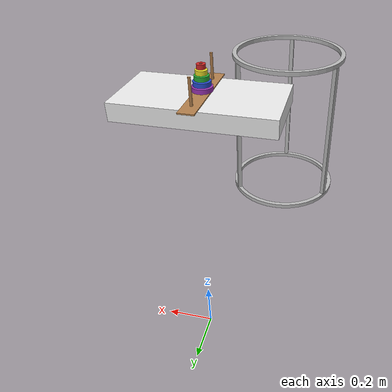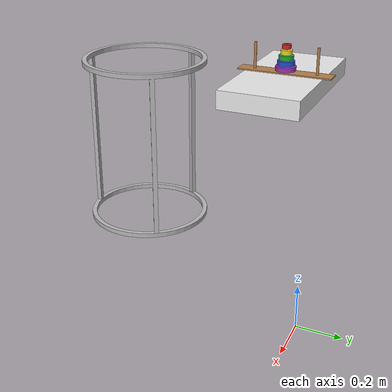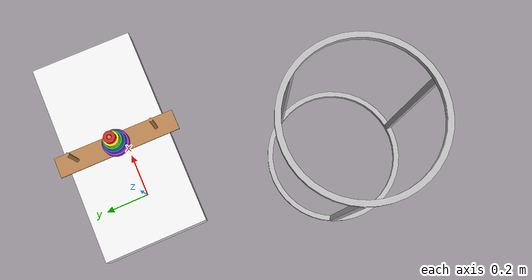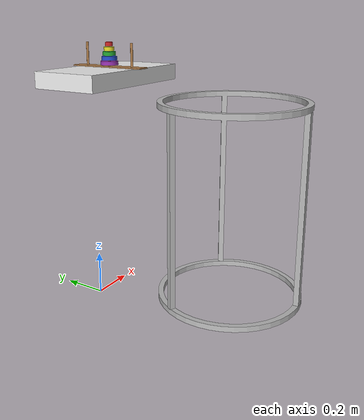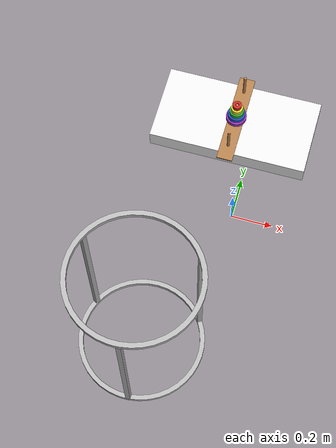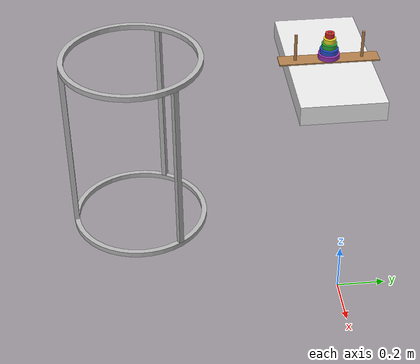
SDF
<sdf version="1.6">
 <world name="default">
  <model name="camera_00">
   <static>true</static>
   <link name="eye_vision_camera">
    <sensor name="camera" type="camera">
     <topic>/robot/camera</topic>
     <camera name="__default__">
      <horizontal_fov>1.57</horizontal_fov>
      <image><width>320</width><height>320</height></image>
      <clip><near>0.1</near><far>100</far></clip>
     </camera>
     <always_on>1</always_on>
     <update_rate>100.0</update_rate>
     <visualize>1</visualize>
     <plugin name="mouse_right_eye" filename="libgazebo_ros_camera.so">
      <alwaysOn>1</alwaysOn>
      <cameraName>robot</cameraName>
      <imageTopicName>camera_rgb_00</imageTopicName>
      <cameraInfoTopicName>camera_rgb_info</cameraInfoTopicName>
      <frameName>camera_link</frameName>
      <hackBaseline>0.07</hackBaseline>
      <distortionK1>0.0</distortionK1>
      <distortionK2>0.0</distortionK2>
      <distortionK3>0.0</distortionK3>
      <distortionT1>0.0</distortionT1>
      <distortionT2>0.0</distortionT2>
     </plugin>
     <plugin name="camera_controller" filename="libgazebo_dvs_plugin.so">
      <cameraName>camera_dvs_00</cameraName>
      <robotNamespace>robot</robotNamespace>
      <eventThreshold>5</eventThreshold>
      <cameraInfoTopicName>camera_info</cameraInfoTopicName>
     </plugin>
    </sensor>
    <gravity>0</gravity>
    <inertial>
     <inertia><ixx>1</ixx><ixy>0</ixy><ixz>0</ixz><iyy>1</iyy><iyz>0</iyz><izz>1</izz></inertia>
     <mass>1</mass>
    </inertial>
   </link>
  </model>
  <light name="sun" type="directional">
   <pose>7.485 -12.379 17.2198 0 -0 0</pose>
   <diffuse>0.7 0.7 0.7 1</diffuse>
   <specular>0.2 0.2 0.2 1</specular>
   <direction>-0.103698 0.1 -0.3</direction>
   <attenuation>
    <range>1000</range>
    <constant>0.9</constant>
    <linear>0.01</linear>
    <quadratic>0.001</quadratic>
   </attenuation>
  </light>
  <include><uri>model://landing_box</uri><pose>-0.2 -0.8 0.3 0 -0 0</pose></include>
  <include><uri>model://hanoi_board</uri><pose>0 -0.1 1.1055 0 -0 0</pose></include>
  <include><uri>model://hanoi_box</uri><pose>-0.44 -0.1 2.035 0 -0 0</pose></include>
  <include><uri>model://hanoi_tower_d300</uri><pose>0 -0.1 1.195 0 -0 0</pose></include>
  <include><uri>model://hanoi_tower_d400</uri><pose>0 -0.1 1.175 0 -0 0</pose></include>
  <include><uri>model://hanoi_tower_d500</uri><pose>0 -0.1 1.155 0 -0 0</pose></include>
  <include><uri>model://hanoi_tower_d600</uri><pose>0 -0.1 1.135 0 -0 0</pose></include>
  <include><uri>model://hanoi_tower_d700</uri><pose>0 -0.1 1.115 0 -0 0</pose></include>
  <physics name="default_physics" default="0" type="ode">
   <max_step_size>0.001</max_step_size>
   <real_time_factor>0.1</real_time_factor>
   <real_time_update_rate>100</real_time_update_rate>
  </physics>
 </world>
</sdf>

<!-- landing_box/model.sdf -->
<sdf version='1.6'>
  <model name='Landing box'>
  <static>true</static>
    <link name='base_link'>
      <pose frame=''>0 0 0 0 -0 0</pose>
      <inertial>
        <pose frame=''>0 0.003044 0.366956 0 -0 0</pose>
        <mass>2.1469</mass>
        <inertia>
          <ixx>0.251683</ixx>
          <ixy>0.00621323</ixy>
          <ixz>-0.015183</ixz>
          <iyy>0.268915</iyy>
          <iyz>-0.00799762</iyz>
          <izz>0.110272</izz>
        </inertia>
      </inertial>
      <collision name='base_link_collision'>
        <pose frame=''>0 0 0 0 -0 0</pose>
        <geometry>
         <cylinder>
            <length>0.02</length>
            <radius>0.26</radius>
          </cylinder>
        </geometry>
      </collision>
      <visual name='base_link_visual'>
        <pose frame=''>0 0 0 0 -0 0</pose>
        <geometry>
          <mesh>
            <scale>1 1 1</scale>
            <uri>model://landing_box/meshes/base_link.dae</uri>
          </mesh>
        </geometry>
      </visual>
    </link>
    <link name='Link_1'>
      <collision name='base_link_fixed_joint_lump__Link_1_collision_1'>
        <pose frame=''>-0.235167 0.112679 0.37 1.5708 -0 2.61799</pose>
        <geometry>
          <box>
              <size>0.02 0.7 0.02</size>
          </box>
        </geometry>
      </collision>
       <visual name='base_link_fixed_joint_lump__Link_1_visual_1'>
        <pose frame=''>-0.235167 0.112679 0.02 1.5708 -0 2.61799</pose>
        <geometry>
          <mesh>
            <scale>1 1 1</scale>
            <uri>model://landing_box/meshes/Link_1.dae</uri>
          </mesh>
        </geometry>
      </visual>
    </link>
    <link name='Link_2'>
      <collision name='base_link_fixed_joint_lump__Link_2_collision_2'>
        <pose frame=''>0.02 -0.26 0.37 -1.5708 -0 -1.5708</pose>
        <geometry>
           <box>
              <size>0.02 0.7 0.02</size>
          </box>
        </geometry>
      </collision>
     <visual name='base_link_fixed_joint_lump__Link_2_visual_2'>
        <pose frame=''>0.02 -0.26 0.02 -1.5708 -0 -1.5708</pose>
        <geometry>
          <mesh>
            <scale>1 1 1</scale>
            <uri>model://landing_box/meshes/Link_2.dae</uri>
          </mesh>
        </geometry>
      </visual>
    </link>
    <link name='Link_3'>
     <collision name='base_link_fixed_joint_lump__Link_3_collision_3'>
        <pose frame=''>0.215167 0.147321 0.37 1.5708 -0 0.523599</pose>
        <geometry>
           <box>
              <size>0.02 0.7 0.02</size>
          </box>
        </geometry>
      </collision>
      <visual name='base_link_fixed_joint_lump__Link_3_visual_3'>
        <pose frame=''>0.215167 0.147321 0.02 1.5708 -0 0.523599</pose>
        <geometry>
          <mesh>
            <scale>1 1 1</scale>
            <uri>model://landing_box/meshes/Link_3.dae</uri>
          </mesh>
        </geometry>
      </visual>
    </link>
    <link name='Link_4'>
      <collision name='base_link_fixed_joint_lump__Link_1_collision_4'>
        <pose frame=''>-0.235167 0.112679 0.73 1.5708 -0 2.61799</pose>
        <geometry>
          <box>
              <size>0.02 0.02 0.3</size>
          </box>
        </geometry>
      </collision>
    </link>
    <link name='Link_5'>
      <collision name='base_link_fixed_joint_lump__Link_2_collision_5'>
        <pose frame=''>0.02 -0.26 0.73 -1.5708 -0 -1.5708</pose>
        <geometry>
           <box>
              <size>0.02 0.02 0.3</size>
          </box>
        </geometry>
      </collision>
    </link>
    <link name='Link_6'>
     <collision name='base_link_fixed_joint_lump__Link_3_collision_6'>
        <pose frame=''>0.215167 0.147321 0.73 1.5708 -0 0.523599</pose>
        <geometry>
           <box>
              <size>0.02 0.02 0.3</size>
          </box>
        </geometry>
      </collision>
    </link>
    <link name='Link_7'>
      <collision name='base_link_fixed_joint_lump__Link_1_collision_7'>
        <pose frame=''>0.235167 -0.112679 0.73 1.5708 -0 2.61799</pose>
        <geometry>
          <box>
              <size>0.02 0.02 0.3</size>
          </box>
        </geometry>
      </collision>
    </link>
    <link name='Link_8'>
      <collision name='base_link_fixed_joint_lump__Link_2_collision_8'>
        <pose frame=''>-0.02 0.26 0.73 -1.5708 -0 -1.5708</pose>
        <geometry>
           <box>
              <size>0.02 0.02 0.3</size>
          </box>
        </geometry>
      </collision>
    </link>
    <link name='Link_9'>
     <collision name='base_link_fixed_joint_lump__Link_3_collision_9'>
        <pose frame=''>-0.215167 -0.147321 0.73 1.5708 -0 0.523599</pose>
        <geometry>
           <box>
              <size>0.02 0.02 0.3</size>
          </box>
        </geometry>
      </collision>
    </link>
  </model>
</sdf>

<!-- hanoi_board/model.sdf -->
<sdf version='1.6'>
  <model name='hanoi_board'>
  <static>0</static>
    <link name='towers_of_hanoi_board_base_link'>
      <pose frame=''>0 0 0 0 -0 0</pose>
      <inertial>
        <pose frame=''>0 0 0 0 -0 0</pose>
        <mass>100</mass>
        <inertia>
          <ixx>100</ixx>
          <ixy>0</ixy>
          <ixz>0</ixz>
          <iyy>100</iyy>
          <iyz>0</iyz>
          <izz>100</izz>
        </inertia>
      </inertial>
      <collision name='towers_of_hanoi_board_base_link_collision'>
        <pose frame=''>0 0 0 0 -0 0</pose>
        <geometry>
          <mesh>
            <scale>1.2 1.2 1</scale>
            <uri>model://hanoi_board/meshes/hanoi-board.stl</uri>
          </mesh>
        </geometry>
        <surface>
          <contact>
            <ode/>
          </contact>
          <friction>
            <ode/>
          </friction>
        </surface>
      </collision>
      <visual name='towers_of_hanoi_board_base_link_visual'>
        <pose frame=''>0 0 0 0 -0 0</pose>
        <geometry>
          <mesh>
            <scale>1 1 1</scale>
            <uri>model://hanoi_board/meshes/hanoi-board.dae</uri>
          </mesh>
        </geometry>
        <material>
          <script>
            <name>Gazebo/Wood</name>
            <uri>file://media/materials/scripts/gazebo.material</uri>
          </script>
        </material>
      </visual>
      <gravity>1</gravity>
      <velocity_decay/>
    </link>
    <joint name='world_towers_of_hanoi_board_joint' type='fixed'>
      <child>towers_of_hanoi_board_base_link</child>
      <parent>world</parent>
    </joint>
  </model>
</sdf>

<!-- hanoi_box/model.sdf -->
<sdf version='1.6'>
  <model name='hanoi_box'>
    <link name='board_box'>
      <pose frame=''>0 0 0 0 -0 0</pose>
      <inertial>
        <pose frame=''>0.44 0 -0.965 0 -0 0</pose>
        <mass>1</mass>
        <inertia>
          <ixx>0</ixx>
          <ixy>0</ixy>
          <ixz>0</ixz>
          <iyy>0</iyy>
          <iyz>0</iyz>
          <izz>0</izz>
        </inertia>
      </inertial>
      <collision name='board_box_collision'>
        <pose frame=''>0.44 0 -0.965 0 -0 0</pose>
        <geometry>
          <box>
            <size>0.6 0.3 0.07</size>
          </box>
        </geometry>
        <surface>
          <contact>
            <ode/>
          </contact>
          <friction>
            <ode/>
          </friction>
        </surface>
      </collision>
      <visual name='board_box_visual'>
        <pose frame=''>0.44 0 -0.965 0 -0 0</pose>
        <geometry>
          <box>
            <size>0.6 0.3 0.07</size>
          </box>
        </geometry>
        <material>
          <script>
            <name>Gazebo/White</name>
            <uri>file://media/materials/scripts/gazebo.material</uri>
          </script>
        </material>
      </visual>
      <gravity>1</gravity>
      <velocity_decay/>
    </link>
    <joint name='fixed' type='fixed'>
      <child>board_box</child>
      <parent>world</parent>
    </joint>
  </model>
</sdf>

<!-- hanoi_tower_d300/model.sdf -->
<sdf version='1.6'>
  <model name='hanoi_tower_d300'>
    <link name='token_d300_link'>
      <pose frame=''>0 0 0 0 -0 0</pose>
      <inertial>
        <pose frame=''>0 0 0.0085 0 -0 0</pose>
        <mass>0.45</mass>
        <inertia>
          <ixx>4.74e-05</ixx>
          <ixy>0</ixy>
          <ixz>0</ixz>
          <iyy>4.74e-05</iyy>
          <iyz>0</iyz>
          <izz>7.3125e-05</izz>
        </inertia>
      </inertial>
      <collision name='token_d300_link_fixed_joint_lump__collision_d300_b1_collision'>
        <pose frame=''>0 0 0.0085 0 -0 0</pose>
        <geometry>
          <mesh>
            <scale>1 1 1</scale>
            <uri>model://hanoi_tower_d300/meshes/token-300.stl</uri>
          </mesh>
        </geometry>
        <surface>
          <contact>
          <ode>
            <kp>1e15</kp>
            <kd>1e13</kd>
          </ode>
        </contact>
          <friction>
            <ode>
              <mu>10</mu>
              <mu2>10</mu2>
              <fdir1>1 1 1</fdir1>
            </ode>
          </friction>
          </surface>
      </collision>
      <visual name='token_d300_link_visual'>
        <pose frame=''>0 0 0.0085 0 -0 0</pose>
        <geometry>
          <mesh>
            <scale>1 1 1</scale>
            <uri>model://hanoi_tower_d300/meshes/token-300.dae</uri>
          </mesh>
        </geometry>
        <material>
          <script>
            <name>Gazebo/Red</name>
            <uri>file://media/materials/scripts/gazebo.material</uri>
          </script>
        </material>
      </visual>
      <gravity>1</gravity>
    </link>
    <plugin filename="libhanoi_tower_token_plugin.so" name="hanoi_tower_token_plugin">
      <mixamorig_RightHandIndex1_z>0.7</mixamorig_RightHandIndex1_z>
      <mixamorig_RightHandIndex2_z>0.8</mixamorig_RightHandIndex2_z>
      <mixamorig_RightHandIndex3_z>0.6</mixamorig_RightHandIndex3_z>
      <token_radius>0.030</token_radius>
    </plugin>
  </model>
</sdf>

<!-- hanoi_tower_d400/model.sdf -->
<sdf version='1.6'>
  <model name='hanoi_tower_d400'>
    <link name='token_d400_link'>
      <pose frame=''>0 0 0 0 -0 0</pose>
      <inertial>
        <pose frame=''>0 0 0.0085 0 -0 0</pose>
        <mass>0.45</mass>
        <inertia>
          <ixx>6.70875e-05</ixx>
          <ixy>0</ixy>
          <ixz>0</ixz>
          <iyy>6.70875e-05</iyy>
          <iyz>0</iyz>
          <izz>0.0001125</izz>
        </inertia>
      </inertial>
      <collision name='token_d400_link_fixed_joint_lump__collision_d400_b1_collision'>
        <pose frame=''>0 0 0.0085 0 -0 0</pose>
        <geometry>
          <mesh>
            <scale>1 1 1</scale>
            <uri>model://hanoi_tower_d400/meshes/token-400.stl</uri>
          </mesh>
        </geometry>
        <surface>
          <contact>
          <ode>
            <kp>1e15</kp>
            <kd>1e13</kd>
          </ode>
        </contact>
          <friction>
            <ode>
              <mu>10</mu>
              <mu2>10</mu2>
              <fdir1>1 1 1</fdir1>
            </ode>
          </friction>
          </surface>
      </collision>
      <visual name='token_d400_link_visual'>
        <pose frame=''>0 0 0.0085 0 -0 0</pose>
        <geometry>
          <mesh>
            <scale>1 1 1</scale>
            <uri>model://hanoi_tower_d400/meshes/token-400.dae</uri>
          </mesh>
        </geometry>
        <material>
          <script>
            <name>Gazebo/Yellow</name>
            <uri>file://media/materials/scripts/gazebo.material</uri>
          </script>
        </material>
      </visual>
      <gravity>1</gravity>
    </link>
    <plugin filename="libhanoi_tower_token_plugin.so" name="hanoi_tower_token_plugin">
      <mixamorig_RightHandIndex1_z>0.6</mixamorig_RightHandIndex1_z>
      <mixamorig_RightHandIndex2_z>0.8</mixamorig_RightHandIndex2_z>
      <mixamorig_RightHandIndex3_z>0.6</mixamorig_RightHandIndex3_z>
      <token_radius>0.040</token_radius>
    </plugin>
  </model>
</sdf>

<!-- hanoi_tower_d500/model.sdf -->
<sdf version='1.6'>
  <model name='hanoi_tower_d500'>
    <link name='token_d500_link'>
      <pose frame=''>0 0 0 0 -0 0</pose>
      <inertial>
        <pose frame=''>0 0 0.0085 0 -0 0</pose>
        <mass>0.45</mass>
        <inertia>
          <ixx>9.24e-05</ixx>
          <ixy>0</ixy>
          <ixz>0</ixz>
          <iyy>9.24e-05</iyy>
          <iyz>0</iyz>
          <izz>0.000163125</izz>
        </inertia>
      </inertial>
      <collision name='token_d500_link_fixed_joint_lump__collision_d500_b1_collision'>
        <pose frame=''>0 0 0.0085 0 -0 0</pose>
        <geometry>
          <mesh>
            <scale>1 1 1</scale>
            <uri>model://hanoi_tower_d500/meshes/token-500.stl</uri>
          </mesh>
        </geometry>
        <surface>
          <contact>
          <ode>
            <kp>1e15</kp>
            <kd>1e13</kd>
          </ode>
        </contact>
          <friction>
            <ode>
              <mu>10</mu>
              <mu2>10</mu2>
              <fdir1>1 1 1</fdir1>
            </ode>
          </friction>
          </surface>
      </collision>
      <visual name='token_d500_link_visual'>
        <pose frame=''>0 0 0.0085 0 -0 0</pose>
        <geometry>
          <mesh>
            <scale>1 1 1</scale>
            <uri>model://hanoi_tower_d500/meshes/token-500.dae</uri>
          </mesh>
        </geometry>
        <material>
          <script>
            <name>Gazebo/Green</name>
            <uri>file://media/materials/scripts/gazebo.material</uri>
          </script>
        </material>
      </visual>
      <gravity>1</gravity>
    </link>
    <plugin filename="libhanoi_tower_token_plugin.so" name="hanoi_tower_token_plugin">
      <mixamorig_RightHandIndex1_z>0.4</mixamorig_RightHandIndex1_z>
      <mixamorig_RightHandIndex2_z>0.8</mixamorig_RightHandIndex2_z>
      <mixamorig_RightHandIndex3_z>0.6</mixamorig_RightHandIndex3_z>
      <token_radius>0.050</token_radius>
    </plugin>
  </model>
</sdf>

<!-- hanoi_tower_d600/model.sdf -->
<sdf version='1.6'>
  <model name='hanoi_tower_d600'>
    <link name='token_d600_link'>
      <pose frame=''>0 0 0 0 -0 0</pose>
      <inertial>
        <pose frame=''>0 0 0.0085 0 -0 0</pose>
        <mass>0.45</mass>
        <inertia>
          <ixx>0.000123338</ixx>
          <ixy>0</ixy>
          <ixz>0</ixz>
          <iyy>0.000123338</iyy>
          <iyz>0</iyz>
          <izz>0.000225</izz>
        </inertia>
      </inertial>
      <collision name='token_d600_link_fixed_joint_lump__collision_d600_b1_collision'>
        <pose frame=''>0 0 0.0085 0 -0 0</pose>
        <geometry>
          <mesh>
            <scale>1 1 1</scale>
            <uri>model://hanoi_tower_d600/meshes/token-600.stl</uri>
          </mesh>
        </geometry>
        <surface>
          <contact>
          <ode>
            <kp>1e15</kp>
            <kd>1e13</kd>
          </ode>
        </contact>
          <friction>
            <ode>
              <mu>10</mu>
              <mu2>10</mu2>
              <fdir1>1 1 1</fdir1>
            </ode>
          </friction>
          </surface>
      </collision>
      <visual name='token_d600_link_visual'>
        <pose frame=''>0 0 0.0085 0 -0 0</pose>
        <geometry>
          <mesh>
            <scale>1 1 1</scale>
            <uri>model://hanoi_tower_d600/meshes/token-600.dae</uri>
          </mesh>
        </geometry>
        <material>
          <script>
            <name>Gazebo/Blue</name>
            <uri>file://media/materials/scripts/gazebo.material</uri>
          </script>
        </material>
      </visual>
      <gravity>1</gravity>
    </link>
    <plugin filename="libhanoi_tower_token_plugin.so" name="hanoi_tower_token_plugin">
      <mixamorig_RightHandIndex1_z>0.3</mixamorig_RightHandIndex1_z>
      <mixamorig_RightHandIndex2_z>0.8</mixamorig_RightHandIndex2_z>
      <mixamorig_RightHandIndex3_z>0.6</mixamorig_RightHandIndex3_z>
      <token_radius>0.060</token_radius>
    </plugin>
  </model>
</sdf>

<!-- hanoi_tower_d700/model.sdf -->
<sdf version='1.6'>
  <model name='hanoi_tower_d700'>
    <link name='token_d700_link'>
      <pose frame=''>0 0 0 0 -0 0</pose>
      <inertial>
        <pose frame=''>0 0 0.0085 0 -0 0</pose>
        <mass>0.45</mass>
        <inertia>
          <ixx>0.0001599</ixx>
          <ixy>0</ixy>
          <ixz>0</ixz>
          <iyy>0.0001599</iyy>
          <iyz>0</iyz>
          <izz>0.000298125</izz>
        </inertia>
      </inertial>
      <collision name='token_d700_link_fixed_joint_lump__collision_d700_b1_collision'>
        <pose frame=''>0 0 0.0085 0 -0 0</pose>
        <geometry>
          <mesh>
            <scale>1 1 1</scale>
            <uri>model://hanoi_tower_d700/meshes/token-700.stl</uri>
          </mesh>
        </geometry>
        <surface>
          <contact>
          <ode>
            <kp>1e15</kp>
            <kd>1e13</kd>
          </ode>
        </contact>
          <friction>
            <ode>
              <mu>10</mu>
              <mu2>10</mu2>
              <fdir1>1 1 1</fdir1>
            </ode>
          </friction>
          </surface>
      </collision>
      <visual name='token_d700_link_visual'>
        <pose frame=''>0 0 0.0085 0 -0 0</pose>
        <geometry>
          <mesh>
            <scale>1 1 1</scale>
            <uri>model://hanoi_tower_d700/meshes/token-700.dae</uri>
          </mesh>
        </geometry>
        <material>
          <script>
            <name>Gazebo/Purple</name>
            <uri>file://media/materials/scripts/gazebo.material</uri>
          </script>
        </material>
      </visual>
      <gravity>1</gravity>
    </link>
    <plugin filename="libhanoi_tower_token_plugin.so" name="hanoi_tower_token_plugin">
      <mixamorig_RightHandIndex1_z>0.2</mixamorig_RightHandIndex1_z>
      <mixamorig_RightHandIndex2_z>0.8</mixamorig_RightHandIndex2_z>
      <mixamorig_RightHandIndex3_z>0.6</mixamorig_RightHandIndex3_z>
      <token_radius>0.070</token_radius>
    </plugin>
  </model>
</sdf>
